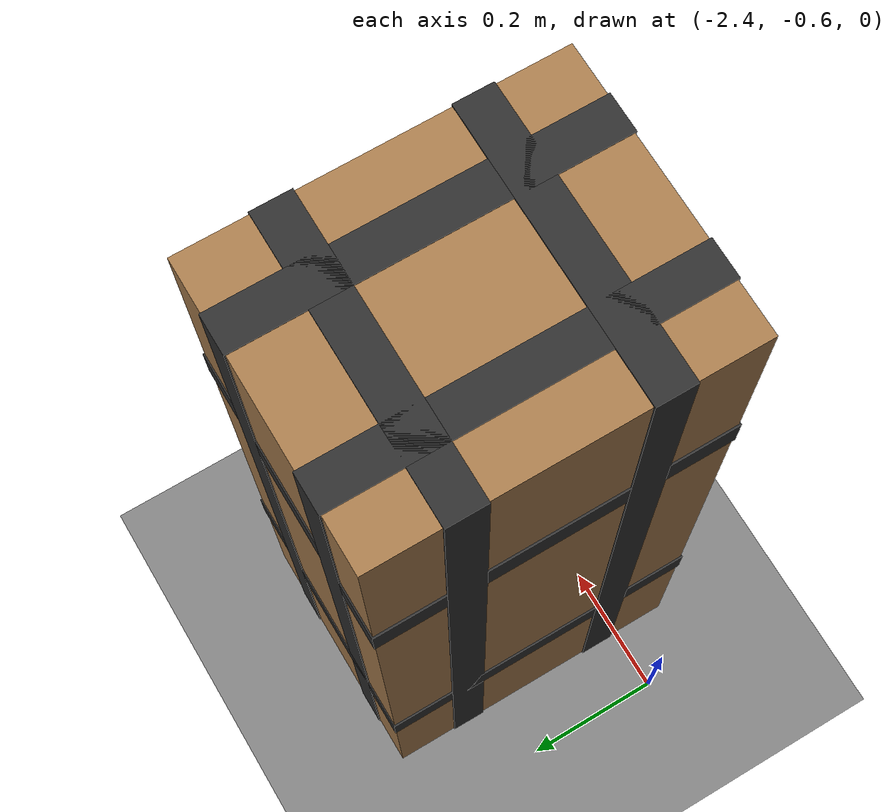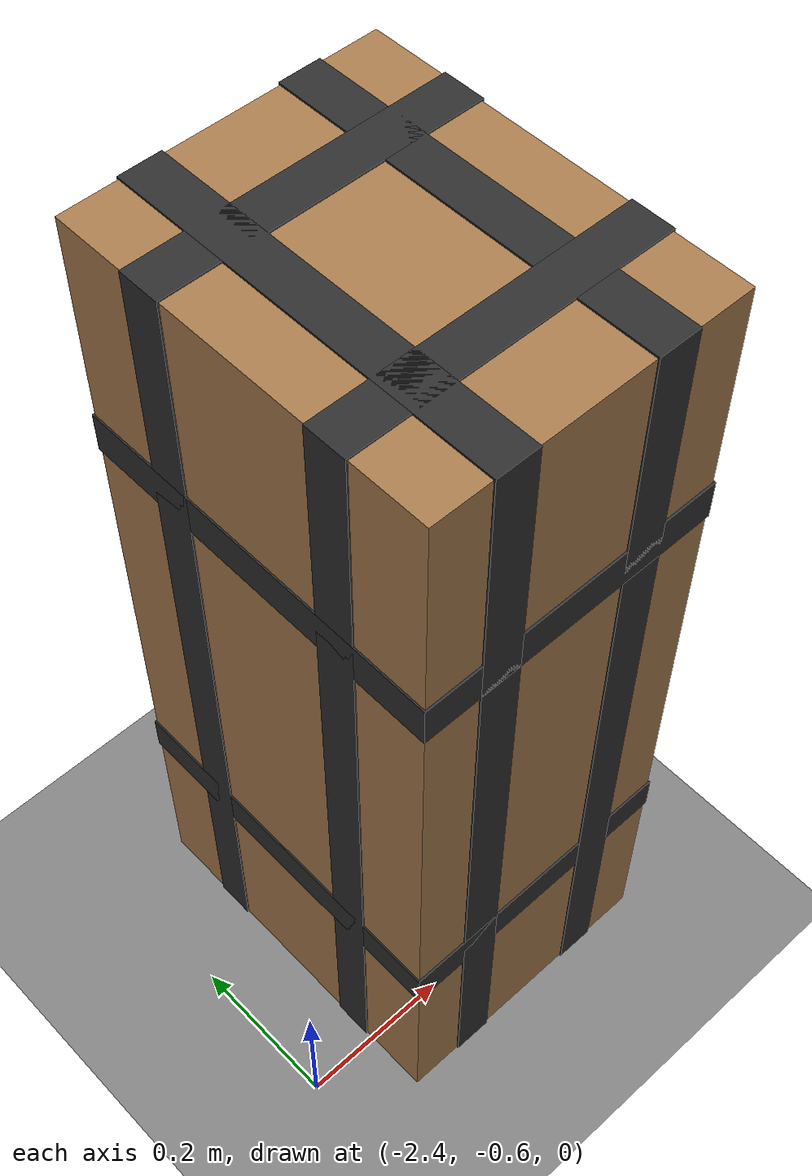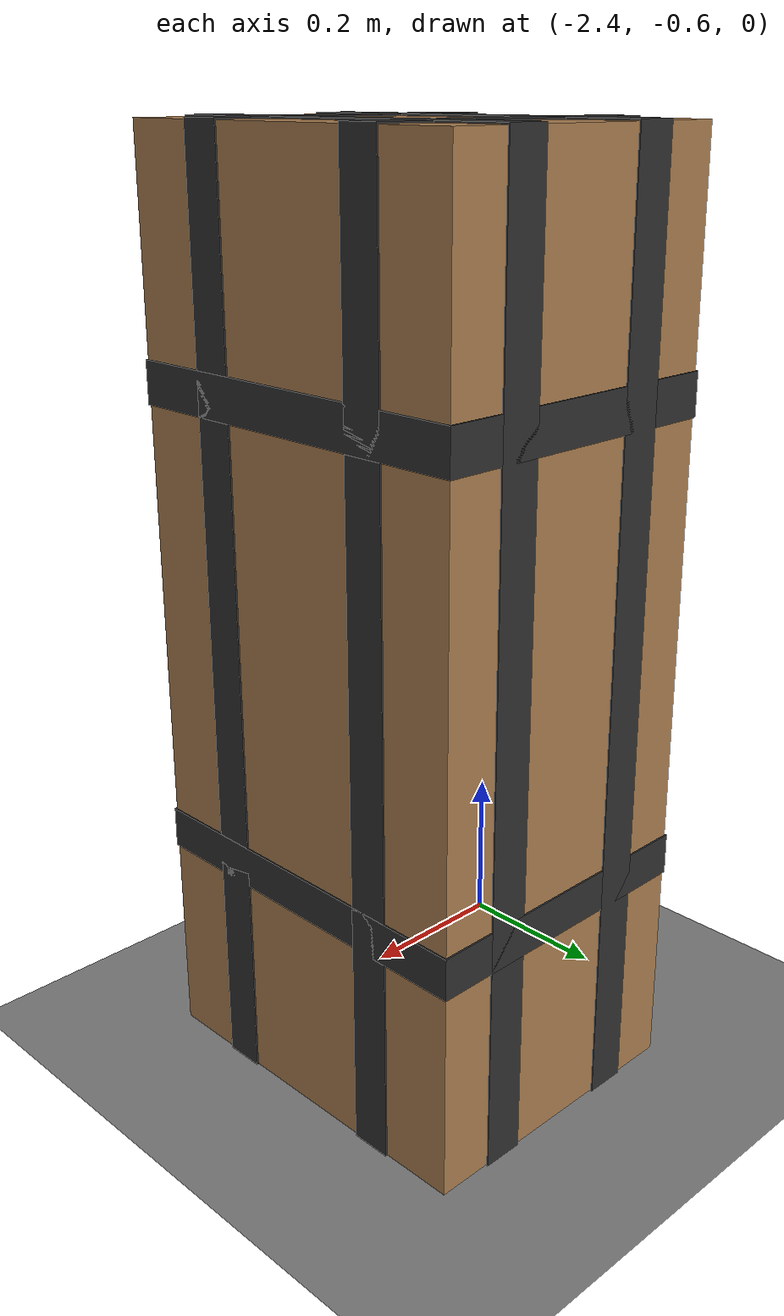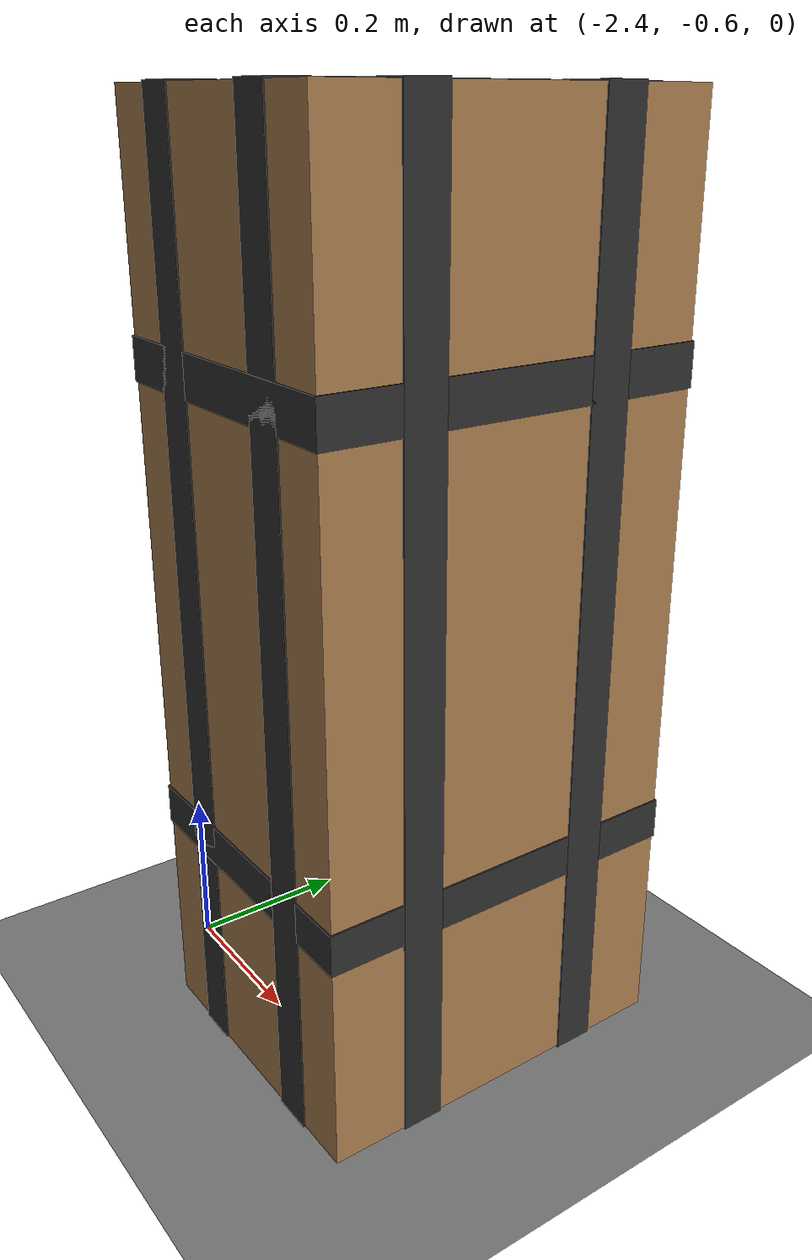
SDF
<sdf version="1.9">
 <world name="ecps295_lowbox_s3_monitor">
  <model name="ground_plane">
   <static>true</static>
   <link name="link">
    <collision name="collision">
     <geometry><plane><normal>0 0 1</normal><size>50 50</size></plane></geometry>
    </collision>
    <visual name="visual">
     <geometry><plane><normal>0 0 1</normal><size>50 50</size></plane></geometry>
     <material><ambient>0.5 0.5 0.5 1</ambient><diffuse>0.5 0.5 0.5 1</diffuse></material>
    </visual>
   </link>
  </model>
  <model name="lb2">
   <static>true</static>
   <pose>-2.12 -0.45 0.55 0 0 0</pose>
   <link name="link">
    <collision name="c"><geometry><box><size>0.37 0.46 1.1</size></box></geometry></collision>
    <visual name="v">
     <geometry><box><size>0.37 0.46 1.1</size></box></geometry>
     <material><ambient>0.65 0.48 0.30 1</ambient><diffuse>0.65 0.48 0.30 1</diffuse></material>
    </visual>
    <visual name="tape_ring0">
     <pose>0.000 0.000 -0.275 0 0 0</pose>
     <geometry><box><size>0.374 0.464 0.050</size></box></geometry>
     <material><ambient>0.18 0.18 0.18 1</ambient><diffuse>0.18 0.18 0.18 1</diffuse></material>
    </visual>
    <visual name="tape_bx0">
     <pose>-0.092 0.000 0.000 0 0 0</pose>
     <geometry><box><size>0.050 0.464 1.104</size></box></geometry>
     <material><ambient>0.18 0.18 0.18 1</ambient><diffuse>0.18 0.18 0.18 1</diffuse></material>
    </visual>
    <visual name="tape_by0">
     <pose>0.000 -0.115 0.000 0 0 0</pose>
     <geometry><box><size>0.374 0.050 1.104</size></box></geometry>
     <material><ambient>0.18 0.18 0.18 1</ambient><diffuse>0.18 0.18 0.18 1</diffuse></material>
    </visual>
    <visual name="tape_ring1">
     <pose>0.000 0.000 0.275 0 0 0</pose>
     <geometry><box><size>0.374 0.464 0.050</size></box></geometry>
     <material><ambient>0.18 0.18 0.18 1</ambient><diffuse>0.18 0.18 0.18 1</diffuse></material>
    </visual>
    <visual name="tape_bx1">
     <pose>0.092 0.000 0.000 0 0 0</pose>
     <geometry><box><size>0.050 0.464 1.104</size></box></geometry>
     <material><ambient>0.18 0.18 0.18 1</ambient><diffuse>0.18 0.18 0.18 1</diffuse></material>
    </visual>
    <visual name="tape_by1">
     <pose>0.000 0.115 0.000 0 0 0</pose>
     <geometry><box><size>0.374 0.050 1.104</size></box></geometry>
     <material><ambient>0.18 0.18 0.18 1</ambient><diffuse>0.18 0.18 0.18 1</diffuse></material>
    </visual>
   </link>
  </model>
 </world>
</sdf>
